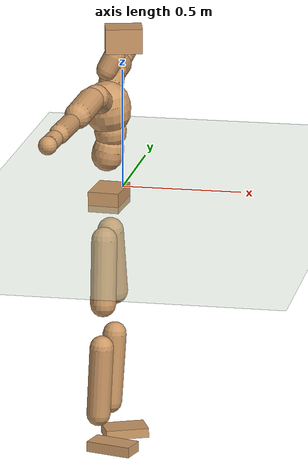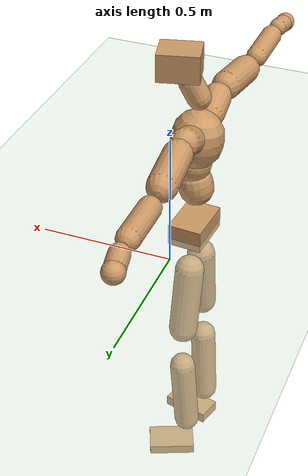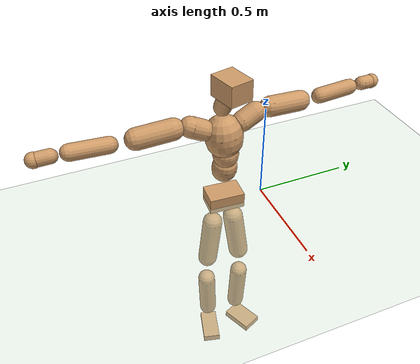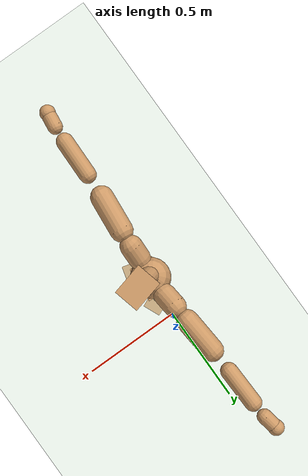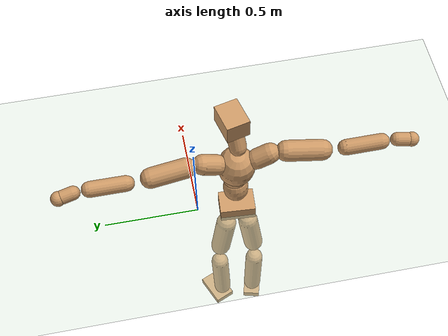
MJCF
<mujoco model="humanoid">
  <compiler coordinate="local" angle="radian"/>
  <default>
    <joint damping="0.0" armature="0.01" stiffness="0.0" limited="true"/>
    <geom conaffinity="1" condim="3" contype="7" margin="0.001" rgba="0.8 0.6 .4 1"/>
  </default>
  <asset>
    <texture type="skybox" builtin="gradient" rgb1=".4 .5 .6" rgb2="0 0 0" width="100" height="100"/>
    <texture builtin="flat" height="1278" mark="cross" markrgb="1 1 1" name="texgeom" random="0.01" rgb1="0.8 0.6 0.4" rgb2="0.8 0.6 0.4" type="cube" width="127"/>
    <texture builtin="checker" height="100" name="texplane" rgb1="0 0 0" rgb2="0.8 0.8 0.8" type="2d" width="100"/>
    <material name="MatPlane" reflectance="0.5" shininess="1" specular="1" texrepeat="60 60" texture="texplane"/>
    <material name="geom" texture="texgeom" texuniform="true"/>
  </asset>
  <worldbody>
    <light cutoff="100" diffuse="1 1 1" dir="-0 0 -1.3" directional="true" exponent="1" pos="0 0 1.3" specular=".1 .1 .1"/>
    <geom conaffinity="1" condim="3" name="floor" pos="0 0 0" rgba="0.8 0.9 0.8 1" size="100 100 .2" type="plane" material="MatPlane"/>
    <body name="Pelvis" pos="-0.0035 -0.2119 0.0206">
      <freejoint name="Pelvis"/>
      <geom type="box" contype="1" conaffinity="1" density="500" pos="-0.0120 0.0008 -0.0082" size="0.0645 0.0937 0.0421" quat="0.9994 0.0000 0.0000 -0.0332" name="Pelvis"/>
      <body name="L_Hip" pos="-0.022 0.0491 -0.0785">
        <joint name="L_Hip_x" type="hinge" pos="0 0 0" axis="1 0 0" stiffness="800" damping="80" armature="0.02" range="-180.0000 180.0000"/>
        <joint name="L_Hip_y" type="hinge" pos="0 0 0" axis="0 1 0" stiffness="800" damping="80" armature="0.02" range="-180.0000 180.0000"/>
        <joint name="L_Hip_z" type="hinge" pos="0 0 0" axis="0 0 1" stiffness="800" damping="80" armature="0.02" range="-180.0000 180.0000"/>
        <geom type="capsule" contype="1" conaffinity="1" density="500" fromto="0.0034 0.0118 -0.0905 0.0136 0.0471 -0.3620" size="0.0551" name="L_Hip"/>
        <body name="L_Knee" pos="0.017 0.0589 -0.4524">
          <joint name="L_Knee_x" type="hinge" pos="0 0 0" axis="1 0 0" stiffness="800" damping="80" armature="0.02" range="-180.0000 180.0000"/>
          <joint name="L_Knee_y" type="hinge" pos="0 0 0" axis="0 1 0" stiffness="800" damping="80" armature="0.02" range="-180.0000 180.0000"/>
          <joint name="L_Knee_z" type="hinge" pos="0 0 0" axis="0 0 1" stiffness="800" damping="80" armature="0.02" range="-180.0000 180.0000"/>
          <geom type="capsule" contype="1" conaffinity="1" density="500" fromto="-0.0063 -0.0025 -0.0996 -0.0251 -0.0101 -0.3986" size="0.0497" name="L_Knee"/>
          <body name="L_Ankle" pos="-0.0313 -0.0126 -0.4982">
            <joint name="L_Ankle_x" type="hinge" pos="0 0 0" axis="1 0 0" stiffness="800" damping="80" armature="0.02" range="-180.0000 180.0000"/>
            <joint name="L_Ankle_y" type="hinge" pos="0 0 0" axis="0 1 0" stiffness="800" damping="80" armature="0.02" range="-180.0000 180.0000"/>
            <joint name="L_Ankle_z" type="hinge" pos="0 0 0" axis="0 0 1" stiffness="800" damping="80" armature="0.02" range="-180.0000 180.0000"/>
            <geom type="box" contype="1" conaffinity="1" density="500" pos="0.0641 0.0276 -0.0341" size="0.091 0.0576 0.02" quat="0.9794 0.0000 0.0000 0.2020" name="L_Ankle"/>
            <body name="L_Toe" pos="0.1282 0.0552 -0.0682">
              <joint name="L_Toe_x" type="hinge" pos="0 0 0" axis="1 0 0" stiffness="500" damping="50" armature="0.02" range="-180.0000 180.0000"/>
              <joint name="L_Toe_y" type="hinge" pos="0 0 0" axis="0 1 0" stiffness="500" damping="50" armature="0.02" range="-180.0000 180.0000"/>
              <joint name="L_Toe_z" type="hinge" pos="0 0 0" axis="0 0 1" stiffness="500" damping="50" armature="0.02" range="-180.0000 180.0000"/>
              <geom type="box" contype="1" conaffinity="1" density="500" pos="0.0000 0.0000 0.0369" size="0.001 0.0027 0.0011" quat="0.9786 0.0000 0.0000 0.2056" name="L_Toe"/>
            </body>
          </body>
        </body>
      </body>
      <body name="R_Hip" pos="-0.0204 -0.0491 -0.0866">
        <joint name="R_Hip_x" type="hinge" pos="0 0 0" axis="1 0 0" stiffness="800" damping="80" armature="0.02" range="-180.0000 180.0000"/>
        <joint name="R_Hip_y" type="hinge" pos="0 0 0" axis="0 1 0" stiffness="800" damping="80" armature="0.02" range="-180.0000 180.0000"/>
        <joint name="R_Hip_z" type="hinge" pos="0 0 0" axis="0 0 1" stiffness="800" damping="80" armature="0.02" range="-180.0000 180.0000"/>
        <geom type="capsule" contype="1" conaffinity="1" density="500" fromto="0.0003 -0.0114 -0.0888 0.0012 -0.0457 -0.3552" size="0.0538" name="R_Hip"/>
        <body name="R_Knee" pos="0.0016 -0.0571 -0.444">
          <joint name="R_Knee_x" type="hinge" pos="0 0 0" axis="1 0 0" stiffness="800" damping="80" armature="0.02" range="-180.0000 180.0000"/>
          <joint name="R_Knee_y" type="hinge" pos="0 0 0" axis="0 1 0" stiffness="800" damping="80" armature="0.02" range="-180.0000 180.0000"/>
          <joint name="R_Knee_z" type="hinge" pos="0 0 0" axis="0 0 1" stiffness="800" damping="80" armature="0.02" range="-180.0000 180.0000"/>
          <geom type="capsule" contype="1" conaffinity="1" density="500" fromto="-0.0057 0.0040 -0.0981 -0.0227 0.0159 -0.3923" size="0.0502" name="R_Knee"/>
          <body name="R_Ankle" pos="-0.0284 0.0199 -0.4903">
            <joint name="R_Ankle_x" type="hinge" pos="0 0 0" axis="1 0 0" stiffness="800" damping="80" armature="0.02" range="-180.0000 180.0000"/>
            <joint name="R_Ankle_y" type="hinge" pos="0 0 0" axis="0 1 0" stiffness="800" damping="80" armature="0.02" range="-180.0000 180.0000"/>
            <joint name="R_Ankle_z" type="hinge" pos="0 0 0" axis="0 0 1" stiffness="800" damping="80" armature="0.02" range="-180.0000 180.0000"/>
            <geom type="box" contype="1" conaffinity="1" density="500" pos="0.0687 -0.0183 -0.0361" size="0.0964 0.0489 0.0222" quat="0.9915 0.0000 0.0000 -0.1301" name="R_Ankle"/>
            <body name="R_Toe" pos="0.1374 -0.0367 -0.0721">
              <joint name="R_Toe_x" type="hinge" pos="0 0 0" axis="1 0 0" stiffness="500" damping="50" armature="0.02" range="-180.0000 180.0000"/>
              <joint name="R_Toe_y" type="hinge" pos="0 0 0" axis="0 1 0" stiffness="500" damping="50" armature="0.02" range="-180.0000 180.0000"/>
              <joint name="R_Toe_z" type="hinge" pos="0 0 0" axis="0 0 1" stiffness="500" damping="50" armature="0.02" range="-180.0000 180.0000"/>
              <geom type="box" contype="1" conaffinity="1" density="500" pos="0.0000 0.0000 0.0366" size="0.001 0.0024 0.0011" quat="0.9926 0.0000 0.0000 -0.1217" name="R_Toe"/>
            </body>
          </body>
        </body>
      </body>
      <body name="Torso" pos="-0.0296 0.0048 0.1158">
        <joint name="Torso_x" type="hinge" pos="0 0 0" axis="1 0 0" stiffness="1000" damping="100" armature="0.02" range="-180.0000 180.0000"/>
        <joint name="Torso_y" type="hinge" pos="0 0 0" axis="0 1 0" stiffness="1000" damping="100" armature="0.02" range="-180.0000 180.0000"/>
        <joint name="Torso_z" type="hinge" pos="0 0 0" axis="0 0 1" stiffness="1000" damping="100" armature="0.02" range="-180.0000 180.0000"/>
        <geom type="capsule" contype="1" conaffinity="1" density="500" fromto="0.0149 0.0021 0.0778 0.0099 0.0014 0.0519" size="0.0653" name="Torso"/>
        <body name="Spine" pos="0.0248 0.0035 0.1297">
          <joint name="Spine_x" type="hinge" pos="0 0 0" axis="1 0 0" stiffness="1000" damping="100" armature="0.02" range="-180.0000 180.0000"/>
          <joint name="Spine_y" type="hinge" pos="0 0 0" axis="0 1 0" stiffness="1000" damping="100" armature="0.02" range="-180.0000 180.0000"/>
          <joint name="Spine_z" type="hinge" pos="0 0 0" axis="0 0 1" stiffness="1000" damping="100" armature="0.02" range="-180.0000 180.0000"/>
          <geom type="capsule" contype="1" conaffinity="1" density="500" fromto="-0.0019 -0.0009 0.0315 -0.0012 -0.0006 0.0210" size="0.0667" name="Spine"/>
          <body name="Chest" pos="-0.0031 -0.0016 0.0525">
            <joint name="Chest_x" type="hinge" pos="0 0 0" axis="1 0 0" stiffness="1000" damping="100" armature="0.02" range="-180.0000 180.0000"/>
            <joint name="Chest_y" type="hinge" pos="0 0 0" axis="0 1 0" stiffness="1000" damping="100" armature="0.02" range="-180.0000 180.0000"/>
            <joint name="Chest_z" type="hinge" pos="0 0 0" axis="0 0 1" stiffness="1000" damping="100" armature="0.02" range="-180.0000 180.0000"/>
            <geom type="capsule" contype="1" conaffinity="1" density="500" fromto="-0.0112 -0.0050 0.0886 -0.0075 -0.0034 0.0590" size="0.0955" name="Chest"/>
            <body name="Neck" pos="-0.0201 -0.0144 0.2147">
              <joint name="Neck_x" type="hinge" pos="0 0 0" axis="1 0 0" stiffness="500" damping="50" armature="0.02" range="-180.0000 180.0000"/>
              <joint name="Neck_y" type="hinge" pos="0 0 0" axis="0 1 0" stiffness="500" damping="50" armature="0.02" range="-180.0000 180.0000"/>
              <joint name="Neck_z" type="hinge" pos="0 0 0" axis="0 0 1" stiffness="500" damping="50" armature="0.02" range="-180.0000 180.0000"/>
              <geom type="capsule" contype="1" conaffinity="1" density="500" fromto="0.0101 0.0022 0.0198 0.0403 0.0087 0.0791" size="0.0438" name="Neck"/>
              <body name="Head" pos="0.0504 0.0109 0.0989">
                <joint name="Head_x" type="hinge" pos="0 0 0" axis="1 0 0" stiffness="500" damping="50" armature="0.02" range="-180.0000 180.0000"/>
                <joint name="Head_y" type="hinge" pos="0 0 0" axis="0 1 0" stiffness="500" damping="50" armature="0.02" range="-180.0000 180.0000"/>
                <joint name="Head_z" type="hinge" pos="0 0 0" axis="0 0 1" stiffness="500" damping="50" armature="0.02" range="-180.0000 180.0000"/>
                <geom type="box" contype="1" conaffinity="1" density="500" pos="0.0262 0.0064 0.0504" size="0.0754 0.0597 0.0514" quat="0.9927 0.0000 0.0000 0.1203" name="Head"/>
              </body>
            </body>
            <body name="L_Thorax" pos="-0.0157 0.0717 0.1151">
              <joint name="L_Thorax_x" type="hinge" pos="0 0 0" axis="1 0 0" stiffness="500" damping="50" armature="0.02" range="-180.0000 180.0000"/>
              <joint name="L_Thorax_y" type="hinge" pos="0 0 0" axis="0 1 0" stiffness="500" damping="50" armature="0.02" range="-180.0000 180.0000"/>
              <joint name="L_Thorax_z" type="hinge" pos="0 0 0" axis="0 0 1" stiffness="500" damping="50" armature="0.02" range="-180.0000 180.0000"/>
              <geom type="capsule" contype="1" conaffinity="1" density="500" fromto="-0.0024 0.0240 0.0107 -0.0096 0.0961 0.0430" size="0.0522" name="L_Thorax"/>
              <body name="L_Shoulder" pos="-0.012 0.1202 0.0537">
                <joint name="L_Shoulder_x" type="hinge" pos="0 0 0" axis="1 0 0" stiffness="500" damping="50" armature="0.02" range="-720.0000 720.0000"/>
                <joint name="L_Shoulder_y" type="hinge" pos="0 0 0" axis="0 1 0" stiffness="500" damping="50" armature="0.02" range="-720.0000 720.0000"/>
                <joint name="L_Shoulder_z" type="hinge" pos="0 0 0" axis="0 0 1" stiffness="500" damping="50" armature="0.02" range="-720.0000 720.0000"/>
                <geom type="capsule" contype="1" conaffinity="1" density="500" fromto="-0.0048 0.0588 -0.0049 -0.0190 0.2354 -0.0196" size="0.0522" name="L_Shoulder"/>
                <body name="L_Elbow" pos="-0.0238 0.2942 -0.0245">
                  <joint name="L_Elbow_x" type="hinge" pos="0 0 0" axis="1 0 0" stiffness="500" damping="50" armature="0.02" range="-720.0000 720.0000"/>
                  <joint name="L_Elbow_y" type="hinge" pos="0 0 0" axis="0 1 0" stiffness="500" damping="50" armature="0.02" range="-720.0000 720.0000"/>
                  <joint name="L_Elbow_z" type="hinge" pos="0 0 0" axis="0 0 1" stiffness="500" damping="50" armature="0.02" range="-720.0000 720.0000"/>
                  <geom type="capsule" contype="1" conaffinity="1" density="500" fromto="-0.0017 0.0599 0.0029 -0.0070 0.2394 0.0117" size="0.0401" name="L_Elbow"/>
                  <body name="L_Wrist" pos="-0.0087 0.2993 0.0146">
                    <joint name="L_Wrist_x" type="hinge" pos="0 0 0" axis="1 0 0" stiffness="300" damping="30" armature="0.02" range="-180.0000 180.0000"/>
                    <joint name="L_Wrist_y" type="hinge" pos="0 0 0" axis="0 1 0" stiffness="300" damping="30" armature="0.02" range="-180.0000 180.0000"/>
                    <joint name="L_Wrist_z" type="hinge" pos="0 0 0" axis="0 0 1" stiffness="300" damping="30" armature="0.02" range="-180.0000 180.0000"/>
                    <geom type="capsule" contype="1" conaffinity="1" density="500" fromto="-0.0034 0.0185 -0.0022 -0.0137 0.0740 -0.0088" size="0.0351" name="L_Wrist"/>
                    <body name="L_Hand" pos="-0.0172 0.0925 -0.011">
                      <joint name="L_Hand_x" type="hinge" pos="0 0 0" axis="1 0 0" stiffness="300" damping="30" armature="0.02" range="-180.0000 180.0000"/>
                      <joint name="L_Hand_y" type="hinge" pos="0 0 0" axis="0 1 0" stiffness="300" damping="30" armature="0.02" range="-180.0000 180.0000"/>
                      <joint name="L_Hand_z" type="hinge" pos="0 0 0" axis="0 0 1" stiffness="300" damping="30" armature="0.02" range="-180.0000 180.0000"/>
                      <geom type="sphere" contype="1" conaffinity="1" density="500" size="0.0375" pos="0.0000 0.0000 0.0000" name="L_Hand"/>
                    </body>
                  </body>
                </body>
              </body>
            </body>
            <body name="R_Thorax" pos="-0.0203 -0.0825 0.1131">
              <joint name="R_Thorax_x" type="hinge" pos="0 0 0" axis="1 0 0" stiffness="500" damping="50" armature="0.02" range="-180.0000 180.0000"/>
              <joint name="R_Thorax_y" type="hinge" pos="0 0 0" axis="0 1 0" stiffness="500" damping="50" armature="0.02" range="-180.0000 180.0000"/>
              <joint name="R_Thorax_z" type="hinge" pos="0 0 0" axis="0 0 1" stiffness="500" damping="50" armature="0.02" range="-180.0000 180.0000"/>
              <geom type="capsule" contype="1" conaffinity="1" density="500" fromto="-0.0006 -0.0221 0.0113 -0.0024 -0.0883 0.0451" size="0.0525" name="R_Thorax"/>
              <body name="R_Shoulder" pos="-0.003 -0.1104 0.0564">
                <joint name="R_Shoulder_x" type="hinge" pos="0 0 0" axis="1 0 0" stiffness="500" damping="50" armature="0.02" range="-720.0000 720.0000"/>
                <joint name="R_Shoulder_y" type="hinge" pos="0 0 0" axis="0 1 0" stiffness="500" damping="50" armature="0.02" range="-720.0000 720.0000"/>
                <joint name="R_Shoulder_z" type="hinge" pos="0 0 0" axis="0 0 1" stiffness="500" damping="50" armature="0.02" range="-720.0000 720.0000"/>
                <geom type="capsule" contype="1" conaffinity="1" density="500" fromto="-0.0054 -0.0593 -0.0058 -0.0216 -0.2370 -0.0232" size="0.0538" name="R_Shoulder"/>
                <body name="R_Elbow" pos="-0.027 -0.2963 -0.029">
                  <joint name="R_Elbow_x" type="hinge" pos="0 0 0" axis="1 0 0" stiffness="500" damping="50" armature="0.02" range="-720.0000 720.0000"/>
                  <joint name="R_Elbow_y" type="hinge" pos="0 0 0" axis="0 1 0" stiffness="500" damping="50" armature="0.02" range="-720.0000 720.0000"/>
                  <joint name="R_Elbow_z" type="hinge" pos="0 0 0" axis="0 0 1" stiffness="500" damping="50" armature="0.02" range="-720.0000 720.0000"/>
                  <geom type="capsule" contype="1" conaffinity="1" density="500" fromto="-0.0011 -0.0610 0.0024 -0.0046 -0.2439 0.0094" size="0.0405" name="R_Elbow"/>
                  <body name="R_Wrist" pos="-0.0057 -0.3048 0.0118">
                    <joint name="R_Wrist_x" type="hinge" pos="0 0 0" axis="1 0 0" stiffness="300" damping="30" armature="0.02" range="-180.0000 180.0000"/>
                    <joint name="R_Wrist_y" type="hinge" pos="0 0 0" axis="0 1 0" stiffness="300" damping="30" armature="0.02" range="-180.0000 180.0000"/>
                    <joint name="R_Wrist_z" type="hinge" pos="0 0 0" axis="0 0 1" stiffness="300" damping="30" armature="0.02" range="-180.0000 180.0000"/>
                    <geom type="capsule" contype="1" conaffinity="1" density="500" fromto="-0.0023 -0.0186 -0.0017 -0.0091 -0.0742 -0.0070" size="0.0351" name="R_Wrist"/>
                    <body name="R_Hand" pos="-0.0114 -0.0928 -0.0087">
                      <joint name="R_Hand_x" type="hinge" pos="0 0 0" axis="1 0 0" stiffness="300" damping="30" armature="0.02" range="-180.0000 180.0000"/>
                      <joint name="R_Hand_y" type="hinge" pos="0 0 0" axis="0 1 0" stiffness="300" damping="30" armature="0.02" range="-180.0000 180.0000"/>
                      <joint name="R_Hand_z" type="hinge" pos="0 0 0" axis="0 0 1" stiffness="300" damping="30" armature="0.02" range="-180.0000 180.0000"/>
                      <geom type="sphere" contype="1" conaffinity="1" density="500" size="0.0373" pos="0.0000 0.0000 0.0000" name="R_Hand"/>
                    </body>
                  </body>
                </body>
              </body>
            </body>
          </body>
        </body>
      </body>
    </body>
  </worldbody>
  <actuator>
    <motor name="L_Hip_x" joint="L_Hip_x" gear="500"/>
    <motor name="L_Hip_y" joint="L_Hip_y" gear="500"/>
    <motor name="L_Hip_z" joint="L_Hip_z" gear="500"/>
    <motor name="L_Knee_x" joint="L_Knee_x" gear="500"/>
    <motor name="L_Knee_y" joint="L_Knee_y" gear="500"/>
    <motor name="L_Knee_z" joint="L_Knee_z" gear="500"/>
    <motor name="L_Ankle_x" joint="L_Ankle_x" gear="500"/>
    <motor name="L_Ankle_y" joint="L_Ankle_y" gear="500"/>
    <motor name="L_Ankle_z" joint="L_Ankle_z" gear="500"/>
    <motor name="L_Toe_x" joint="L_Toe_x" gear="500"/>
    <motor name="L_Toe_y" joint="L_Toe_y" gear="500"/>
    <motor name="L_Toe_z" joint="L_Toe_z" gear="500"/>
    <motor name="R_Hip_x" joint="R_Hip_x" gear="500"/>
    <motor name="R_Hip_y" joint="R_Hip_y" gear="500"/>
    <motor name="R_Hip_z" joint="R_Hip_z" gear="500"/>
    <motor name="R_Knee_x" joint="R_Knee_x" gear="500"/>
    <motor name="R_Knee_y" joint="R_Knee_y" gear="500"/>
    <motor name="R_Knee_z" joint="R_Knee_z" gear="500"/>
    <motor name="R_Ankle_x" joint="R_Ankle_x" gear="500"/>
    <motor name="R_Ankle_y" joint="R_Ankle_y" gear="500"/>
    <motor name="R_Ankle_z" joint="R_Ankle_z" gear="500"/>
    <motor name="R_Toe_x" joint="R_Toe_x" gear="500"/>
    <motor name="R_Toe_y" joint="R_Toe_y" gear="500"/>
    <motor name="R_Toe_z" joint="R_Toe_z" gear="500"/>
    <motor name="Torso_x" joint="Torso_x" gear="500"/>
    <motor name="Torso_y" joint="Torso_y" gear="500"/>
    <motor name="Torso_z" joint="Torso_z" gear="500"/>
    <motor name="Spine_x" joint="Spine_x" gear="500"/>
    <motor name="Spine_y" joint="Spine_y" gear="500"/>
    <motor name="Spine_z" joint="Spine_z" gear="500"/>
    <motor name="Chest_x" joint="Chest_x" gear="500"/>
    <motor name="Chest_y" joint="Chest_y" gear="500"/>
    <motor name="Chest_z" joint="Chest_z" gear="500"/>
    <motor name="Neck_x" joint="Neck_x" gear="500"/>
    <motor name="Neck_y" joint="Neck_y" gear="500"/>
    <motor name="Neck_z" joint="Neck_z" gear="500"/>
    <motor name="Head_x" joint="Head_x" gear="500"/>
    <motor name="Head_y" joint="Head_y" gear="500"/>
    <motor name="Head_z" joint="Head_z" gear="500"/>
    <motor name="L_Thorax_x" joint="L_Thorax_x" gear="500"/>
    <motor name="L_Thorax_y" joint="L_Thorax_y" gear="500"/>
    <motor name="L_Thorax_z" joint="L_Thorax_z" gear="500"/>
    <motor name="L_Shoulder_x" joint="L_Shoulder_x" gear="500"/>
    <motor name="L_Shoulder_y" joint="L_Shoulder_y" gear="500"/>
    <motor name="L_Shoulder_z" joint="L_Shoulder_z" gear="500"/>
    <motor name="L_Elbow_x" joint="L_Elbow_x" gear="500"/>
    <motor name="L_Elbow_y" joint="L_Elbow_y" gear="500"/>
    <motor name="L_Elbow_z" joint="L_Elbow_z" gear="500"/>
    <motor name="L_Wrist_x" joint="L_Wrist_x" gear="500"/>
    <motor name="L_Wrist_y" joint="L_Wrist_y" gear="500"/>
    <motor name="L_Wrist_z" joint="L_Wrist_z" gear="500"/>
    <motor name="L_Hand_x" joint="L_Hand_x" gear="500"/>
    <motor name="L_Hand_y" joint="L_Hand_y" gear="500"/>
    <motor name="L_Hand_z" joint="L_Hand_z" gear="500"/>
    <motor name="R_Thorax_x" joint="R_Thorax_x" gear="500"/>
    <motor name="R_Thorax_y" joint="R_Thorax_y" gear="500"/>
    <motor name="R_Thorax_z" joint="R_Thorax_z" gear="500"/>
    <motor name="R_Shoulder_x" joint="R_Shoulder_x" gear="500"/>
    <motor name="R_Shoulder_y" joint="R_Shoulder_y" gear="500"/>
    <motor name="R_Shoulder_z" joint="R_Shoulder_z" gear="500"/>
    <motor name="R_Elbow_x" joint="R_Elbow_x" gear="500"/>
    <motor name="R_Elbow_y" joint="R_Elbow_y" gear="500"/>
    <motor name="R_Elbow_z" joint="R_Elbow_z" gear="500"/>
    <motor name="R_Wrist_x" joint="R_Wrist_x" gear="500"/>
    <motor name="R_Wrist_y" joint="R_Wrist_y" gear="500"/>
    <motor name="R_Wrist_z" joint="R_Wrist_z" gear="500"/>
    <motor name="R_Hand_x" joint="R_Hand_x" gear="500"/>
    <motor name="R_Hand_y" joint="R_Hand_y" gear="500"/>
    <motor name="R_Hand_z" joint="R_Hand_z" gear="500"/>
  </actuator>
  <contact>
    <exclude body1="Torso" body2="Chest"/>
    <exclude body1="Head" body2="Chest"/>
    <exclude body1="R_Knee" body2="R_Toe"/>
    <exclude body1="R_Knee" body2="L_Ankle"/>
    <exclude body1="R_Knee" body2="L_Toe"/>
    <exclude body1="L_Knee" body2="L_Toe"/>
    <exclude body1="L_Knee" body2="R_Ankle"/>
    <exclude body1="L_Knee" body2="R_Toe"/>
    <exclude body1="L_Shoulder" body2="Chest"/>
    <exclude body1="R_Shoulder" body2="Chest"/>
  </contact>
  <sensor/>
  <size njmax="700" nconmax="700"/>
</mujoco>
